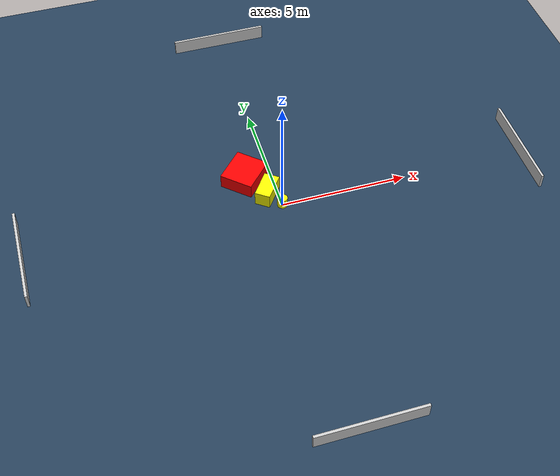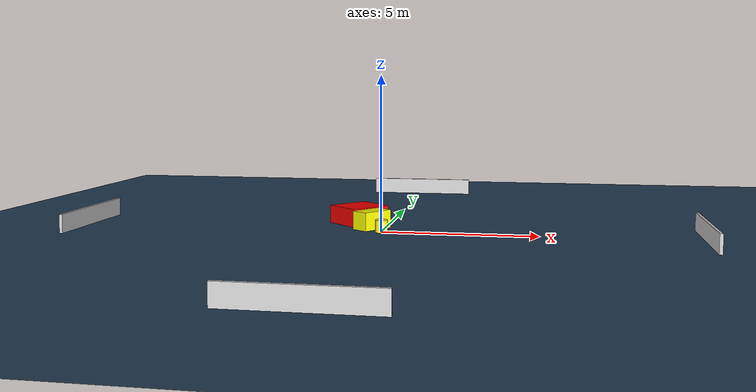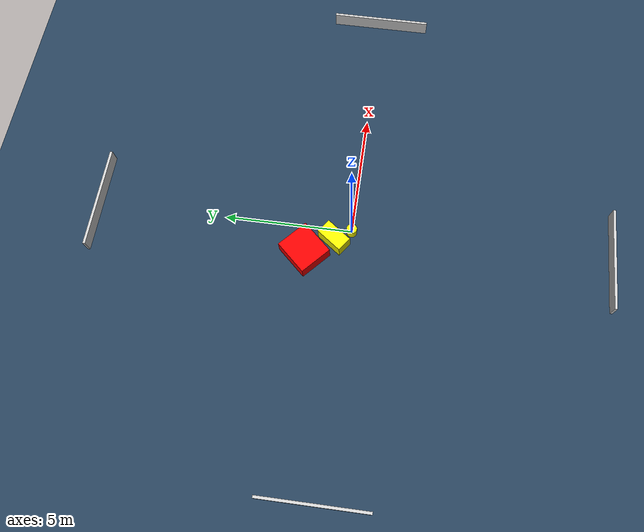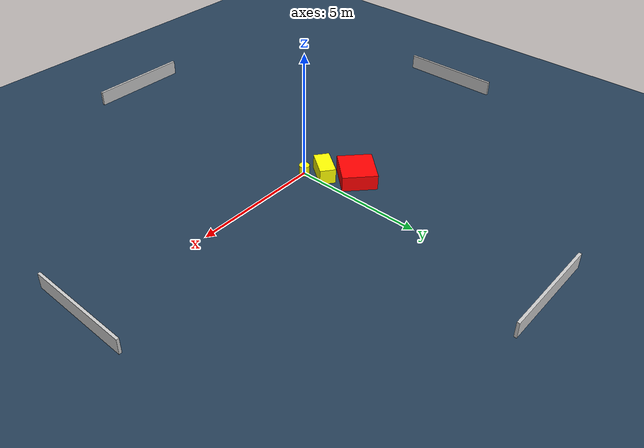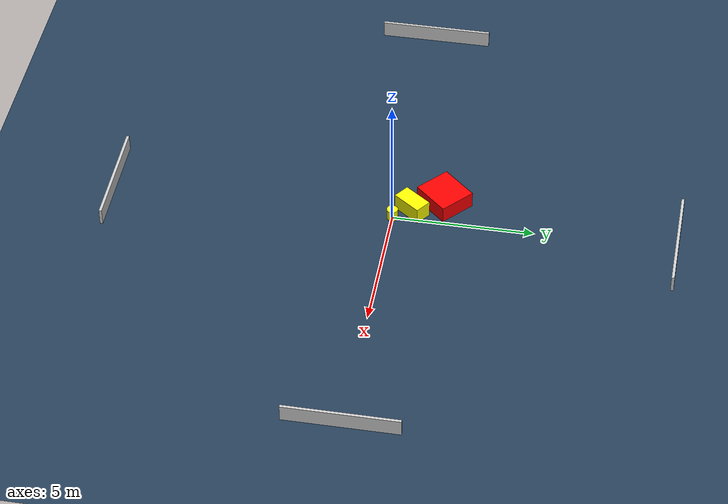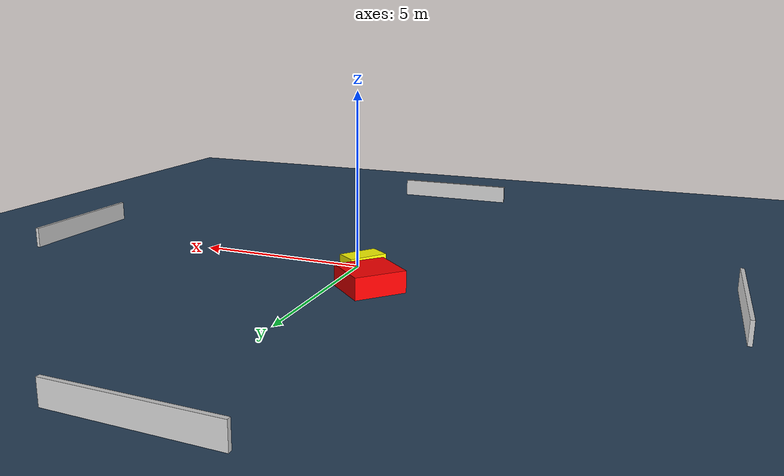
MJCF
<?xml version="1.0" ?>
<mujoco model="generated_environment">
  <option timestep="0.01" integrator="RK4" cone="elliptic"/>
  <default>
    <geom density="1"/>
  </default>
  <asset>
    <texture builtin="gradient" height="3072" name="skybox" rgb1="0.3 0.5 0.7" rgb2="0 0 0" type="skybox" width="512"/>
    <texture builtin="checker" height="300" name="groundplane" rgb1="0.2 0.3 0.4" rgb2="0.1 0.2 0.3" type="2d" width="300"/>
    <material name="groundplane" reflectance="0.2" texrepeat="5 5" texture="groundplane"/>
  </asset>
  <worldbody>
    <light dir="0 0 -1" directional="true" pos="0 0 1.5"/>
    <geom condim="3" friction="0.5 0.005 0.001" material="groundplane" name="floor" pos="0 0 0" size="0 0 0.05" type="plane"/>
    <body name="walls">
      <geom name="wall_1" condim="4" pos="-10.0 0.0 0.3" rgba="0.800000011920929 0.800000011920929 0.800000011920929 1.0" size="0.05 2.0 0.3" type="box"/>
      <geom name="wall_2" condim="4" pos="10.0 0.0 0.3" rgba="0.800000011920929 0.800000011920929 0.800000011920929 1.0" size="0.05 2.0 0.3" type="box"/>
      <geom name="wall_3" condim="4" pos="0.0 -10.0 0.3" rgba="0.800000011920929 0.800000011920929 0.800000011920929 1.0" size="2.0 0.05 0.3" type="box"/>
      <geom name="wall_4" condim="4" pos="0.0 10.0 0.3" rgba="0.800000011920929 0.800000011920929 0.800000011920929 1.0" size="2.0 0.05 0.3" type="box"/>
    </body>
    <body name="robot">
      <joint name="joint_x" type="slide" pos="0 0 0" axis="1 0 0"/>
      <joint name="joint_y" type="slide" pos="0 0 0" axis="0 1 0"/>
      <geom name="robot" type="cylinder" pos="0.0 0.0 0.2" size="0.2 0.2 0.0" mass="5.0" friction="1.0 0.005 0.0001" condim="4" rgba="1.0 1.0 0.0 1.0"/>
    </body>
    <body name="obstacle_1_movable">
      <geom name="obstacle_1_movable" condim="4" pos="-0.42664237377771447 0.6340923101960559 0.3" euler="0 0 143.8742736835193" friction="0.0 0.005 0.001" rgba="1.0 1.0 0.0 1.0" size="0.30410589588722914 0.556601511572872 0.3" type="box" mass="0.1"/>
      <joint type="free"/>
    </body>
    <body name="obstacle_2_static">
      <geom name="obstacle_2_static" condim="4" pos="-1.0587461534397304 1.6926679884816156 0.3" euler="0 0 317.6571157156381" friction="0.0 0.005 0.001" rgba="1.0 0.0 0.0 1.0" size="0.6658706817153529 0.7261135916290069 0.3" type="box"/>
    </body>
  </worldbody>
  <actuator>
    <motor name="actuator_x" joint="joint_x" gear="1" ctrlrange="-1 1"/>
    <motor name="actuator_y" joint="joint_y" gear="1" ctrlrange="-1 1"/>
  </actuator>
</mujoco>
